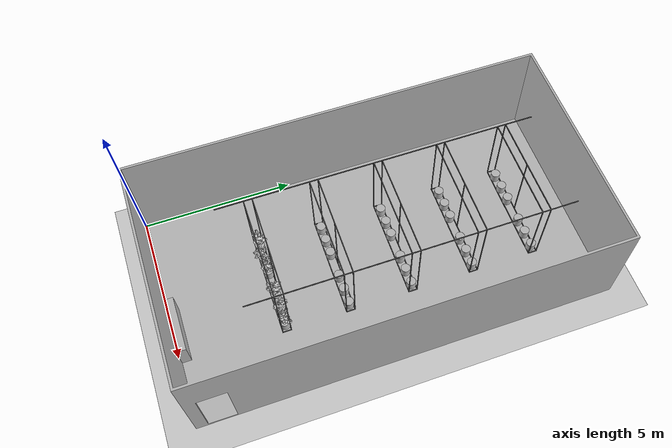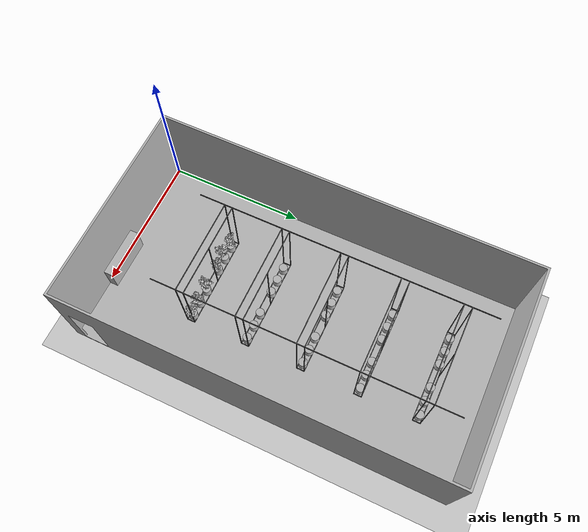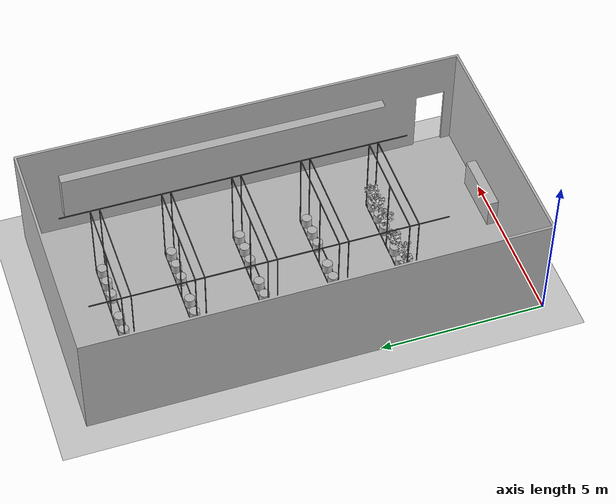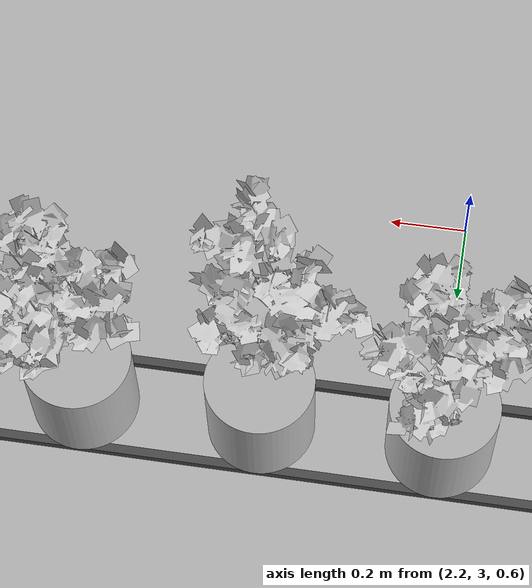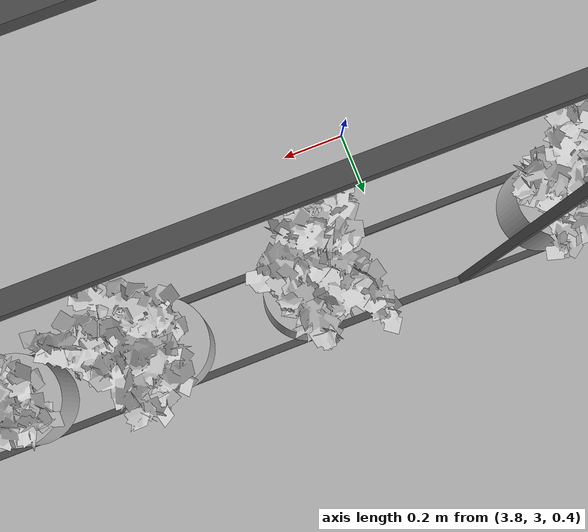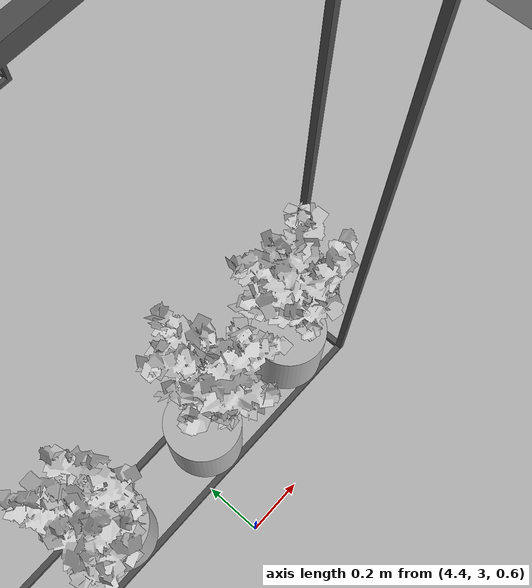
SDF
<?xml version="1.0"?>

<sdf version="1.4">
  <world name="default">
    <scene>
      <ambient>0.4 0.4 0.4 1</ambient>
      <background>0.7 0.7 0.7 1</background>
      <shadows>false</shadows>
    </scene>

    <include>
      <uri>model://ground_plane</uri>
    </include>
    <include>
      <uri>model://sun</uri>
    </include>
    <include>
      <uri>model://greenhouse-textured</uri>
      <pose>7.33 0 0 0 0 -3.14159</pose>
    </include>

    <!-- trees -->
    <include>
      <name>tree_0</name>
      <uri>model://tree-flowers</uri>
      <pose>2.21 3.39 0.35 0 0 0.276</pose>
    </include>
    <include>
      <name>tree_1</name>
      <uri>model://tree-flowers</uri>
      <pose>2.72 3.39 0.35 0 0 2.132</pose>
    </include>
    <include>
      <name>tree_2</name>
      <uri>model://tree-flowers</uri>
      <pose>3.24 3.39 0.35 0 0 6.25</pose>
    </include>
    <include>
      <name>tree_3</name>
      <uri>model://tree-flowers</uri>
      <pose>4.10 3.41 0.35 0 0 1.259</pose>
    </include>
    <include>
      <name>tree_4</name>
      <uri>model://tree-flowers</uri>
      <pose>4.62 3.41 0.35 0 0 5.014</pose>
    </include>
    <include>
      <name>tree_5</name>
      <uri>model://tree-flowers</uri>
      <pose>5.12 3.41 0.35 0 0 5.981</pose>
    </include>

    <physics type='ode'>
      <ode>
        <solver>
          <friction_model>cone_model</friction_model>
        </solver>
      </ode>
    </physics>
  </world>
</sdf>

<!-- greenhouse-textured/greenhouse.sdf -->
<sdf version="1.5">
    <model name="greenhouse-textured">
      <static>true</static>
      <link name="body">
        <visual name="visual_walls">
          <geometry>
            <mesh><uri>model://greenhouse-textured/meshes/greenhouse-walls.dae</uri></mesh>
          </geometry>
          <material>
            <script>
              <uri>model://greenhouse-textured/materials/scripts/</uri>
              <uri>model://greenhouse-textured/materials/textures/</uri>
              <name>Greenhouse/Wall</name>
            </script>
          </material>
        </visual>
        <visual name="visual_pots">
          <geometry>
            <mesh><uri>model://greenhouse-textured/meshes/greenhouse-pots.dae</uri></mesh>
          </geometry>
          <material>
            <script>
              <uri>model://greenhouse-textured/materials/scripts/</uri>
              <uri>model://greenhouse-textured/materials/textures/</uri>
              <name>Greenhouse/Pot</name>
            </script>
          </material>
        </visual>
        <visual name="visual_scaffold">
          <geometry>
            <mesh><uri>model://greenhouse-textured/meshes/greenhouse-scaffold.dae</uri></mesh>
          </geometry>
          <material>
            <script>
              <name>Gazebo/DarkGrey</name>
            </script>
          </material>
        </visual>
        <visual name="visual_table">
          <geometry>
            <mesh><uri>model://greenhouse-textured/meshes/greenhouse-table.dae</uri></mesh>
          </geometry>
          <material>
            <script>
              <uri>model://greenhouse-textured/materials/scripts/</uri>
              <uri>model://greenhouse-textured/materials/textures/</uri>
              <name>Greenhouse/Table</name>
            </script>
          </material>
        </visual>
        <collision name='collision_walls'>
          <geometry>
            <mesh><uri>model://greenhouse-textured/meshes/greenhouse-walls.dae</uri></mesh>
          </geometry>
        </collision>
        <collision name='collision_pots'>
          <geometry>
            <mesh><uri>model://greenhouse-textured/meshes/greenhouse-pots.dae</uri></mesh>
          </geometry>
        </collision>
        <collision name='collision_table'>
          <geometry>
            <mesh><uri>model://greenhouse-textured/meshes/greenhouse-table.dae</uri></mesh>
          </geometry>
        </collision>
      </link>
    </model>
</sdf>

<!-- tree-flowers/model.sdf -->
<!--  skew 1-->
<?xml version="1.0"?>
<sdf version="1.6">
  <model name="tree-flowers">
    <static>true</static>
    <link name="link"></link>

    <include>
      <uri>model://tree-mesh</uri>
      <pose>0 0 0 0 0 0</pose>
    </include>
    <joint name="tree_joint" type="fixed">
      <child>tree-mesh::link</child>
      <parent>link</parent>
    </joint>

    <include>
      <name>bramble_0</name>
      <uri>model://bramble</uri>
      <pose>0.107537 -0.046881 0.402327 -1.00423 1.504 -1.45072</pose>
    </include>
    <include>
      <name>bramble_1</name>
      <uri>model://bramble</uri>
      <pose>-0.058506 -0.057965 0.348676 1.46057 -0.026669 -0.236442</pose>
    </include>
    <include>
      <name>bramble_2</name>
      <uri>model://bramble</uri>
      <pose>0.015803 0.202531 0.358288 -1.42731 0 0</pose>
    </include>
    <include>
      <name>bramble_3</name>
      <uri>model://bramble</uri>
      <pose>0.067876 -0.089279 0.474349 1.08554 0.353465 0.580889</pose>
    </include>
    <include>
      <name>bramble_4</name>
      <uri>model://bramble</uri>
      <pose>-0.198057 -0.016410 0.499770 0 -1.49206 0</pose>
    </include>
    <include>
      <name>bramble_5</name>
      <uri>model://bramble</uri>
      <pose>0.087757 0.104908 0.596102 0 1.49055 0</pose>
    </include>

    <joint name="flower_joint_0" type="fixed">
      <child>bramble_0::flower_link</child>
      <parent>link</parent>
    </joint>
    <joint name="flower_joint_1" type="fixed">
      <child>bramble_1::flower_link</child>
      <parent>link</parent>
    </joint>
    <joint name="flower_joint_2" type="fixed">
      <child>bramble_2::flower_link</child>
      <parent>link</parent>
    </joint>
    <joint name="flower_joint_3" type="fixed">
      <child>bramble_3::flower_link</child>
      <parent>link</parent>
    </joint>
    <joint name="flower_joint_4" type="fixed">
      <child>bramble_4::flower_link</child>
      <parent>link</parent>
    </joint>
    <joint name="flower_joint_5" type="fixed">
      <child>bramble_5::flower_link</child>
      <parent>link</parent>
    </joint>

  </model>
</sdf>

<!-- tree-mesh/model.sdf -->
<sdf version="1.6">
  <model name="tree-mesh">
    <static>true</static>
    <link name="link">

      <collision name="collision">
        <geometry>
          <mesh>
            <uri>model://tree-mesh/meshes/new_tree.dae</uri>
            <scale>0.0625 0.0625 0.0625</scale>
          </mesh>
        </geometry>
      </collision>

      <!-- simplified collision for sake of speed since leaves shouldn't be blocking anyway -->

      <visual name="leaves">
        <geometry>
          <mesh>
            <uri>model://tree-mesh/meshes/leaves.dae</uri>
            <scale>0.0325 0.0325 0.0325</scale>
          </mesh>
        </geometry>
        <material>
          <script>
            <uri>model://tree-mesh/materials/scripts/</uri>
            <uri>model://tree-mesh/materials/textures/</uri>
            <name>NewTree/Branch</name>
          </script>
        </material>
      </visual>
      <visual name="bark">
        <geometry>
          <mesh>
            <uri>model://tree-mesh/meshes/bark.dae</uri>
            <scale>0.0325 0.0325 0.0325</scale>
          </mesh>
        </geometry>
        <material>
          <script>
            <uri>model://tree-mesh/materials/scripts/</uri>
            <uri>model://tree-mesh/materials/textures/</uri>
            <name>NewTree/Bark</name>
          </script>
        </material>
      </visual>
    </link>
  </model>
</sdf>

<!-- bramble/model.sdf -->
<sdf version="1.6">
  <model name="bramble">
    <static>true</static>
    <link name="flower_link">
      <collision name="body_collision">
        <geometry>
          <mesh>
            <uri>model://bramble/meshes/bramble.dae</uri>
            <scale>0.2 0.2 0.2</scale>
          </mesh>
        </geometry>
      </collision>
      <visual name="petals">
        <geometry>
          <mesh>
            <uri>model://bramble/meshes/bramble.dae</uri>
            <scale>0.2 0.2 0.2</scale>
            <submesh>
              <name>petal</name>
            </submesh>
          </mesh>
        </geometry>
        <material>
          <script>
            <uri>model://bramble/materials/scripts/</uri>
            <uri>model://bramble/materials/textures/</uri>
            <name>Bramble/Petal</name>
          </script>
        </material>
      </visual>
      <visual name="carpel">
        <geometry>
          <mesh>
            <uri>model://bramble/meshes/bramble.dae</uri>
            <scale>0.2 0.2 0.2</scale>
            <submesh>
              <name>carpel</name>
            </submesh>
          </mesh>
        </geometry>
        <material>
          <script>
            <uri>model://bramble/materials/scripts/</uri>
            <uri>model://bramble/materials/textures/</uri>
            <name>Bramble/Carpel</name>
          </script>
        </material>
      </visual>
      <visual name="stamen">
        <geometry>
          <mesh>
            <uri>model://bramble/meshes/bramble.dae</uri>
            <scale>0.2 0.2 0.2</scale>
            <submesh>
              <name>stamen</name>
            </submesh>
          </mesh>
        </geometry>
        <material>
          <script>
            <uri>model://bramble/materials/scripts/</uri>
            <uri>model://bramble/materials/textures/</uri>
            <name>Bramble/Stamen</name>
          </script>
        </material>
      </visual>
    </link>
  </model>
</sdf>
